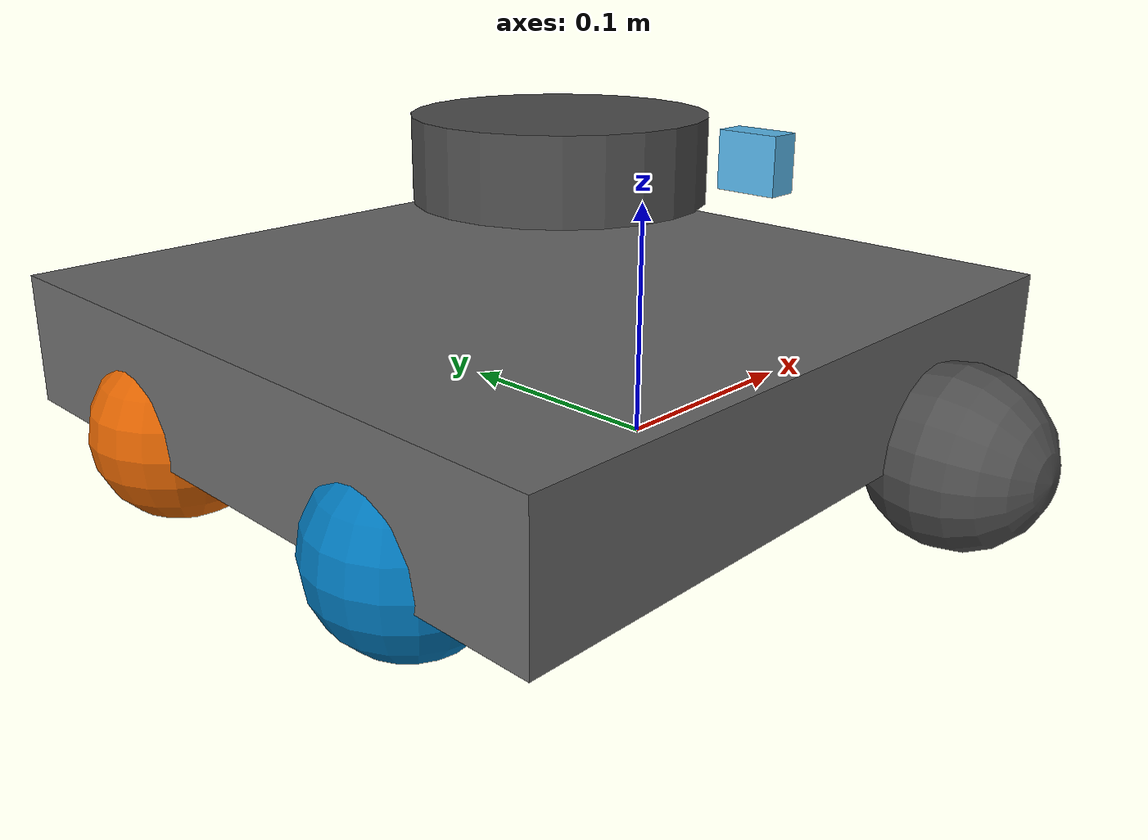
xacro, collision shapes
<?xml version="1.0" ?>
<robot name="turtlebot3_waffle_pi" xmlns:xacro="http://ros.org/wiki/xacro">

  <!-- Multi-robot namespacing arguments and properties -->
  <xacro:arg name="robot_name" default="tb3_1"/>
  <xacro:property name="robot_name" value="$(arg robot_name)"/>
  <xacro:property name="prefix" value="${robot_name}/"/>

  <!-- Init colour materials -->
  <material name="black"><color rgba="0.0 0.0 0.0 1.0"/></material>
  <material name="dark"><color rgba="0.3 0.3 0.3 1.0"/></material>
  <material name="light_black"><color rgba="0.4 0.4 0.4 1.0"/></material>
  <material name="blue"><color rgba="0.0 0.0 0.8 1.0"/></material>
  <material name="green"><color rgba="0.0 0.8 0.0 1.0"/></material>
  <material name="grey"><color rgba="0.5 0.5 0.5 1.0"/></material>
  <material name="orange"><color rgba="1.0 0.4235 0.0392 1.0"/></material>
  <material name="brown"><color rgba="0.8706 0.8118 0.7647 1.0"/></material>
  <material name="red"><color rgba="0.8 0.0 0.0 1.0"/></material>
  <material name="white"><color rgba="1.0 1.0 1.0 1.0"/></material>

  <!-- Base Footprint -->
  <link name="${prefix}base_footprint"/>

  <joint name="${prefix}base_joint" type="fixed">
    <parent link="${prefix}base_footprint"/>
    <child link="${prefix}base_link" />
    <origin xyz="0 0 0.010" rpy="0 0 0"/>
  </joint>

  <!-- Base Link -->
  <link name="${prefix}base_link">
    <visual>
      <origin xyz="-0.064 0 0.0" rpy="0 0 0"/>
      <geometry>
        <mesh filename="package://swarm_simulation/meshes/bases/waffle_pi_base.stl" scale="0.001 0.001 0.001"/>
      </geometry>
      <material name="light_black"/>
    </visual>
    <collision>
      <origin xyz="-0.064 0 0.047" rpy="0 0 0"/>
      <geometry><box size="0.266 0.266 0.050"/></geometry>
    </collision>
    <inertial>
      <origin xyz="-0.064 0 0" rpy="0 0 0"/>
      <mass value="1.3729096e+00"/>
      <inertia ixx="8.7002718e-03" ixy="-4.7576583e-05" ixz="1.1160499e-04" iyy="8.6195418e-03" iyz="-3.5422299e-06" izz="1.4612727e-02" />
    </inertial>
  </link>
  <gazebo reference="${prefix}base_link">
    <mu1>0.0</mu1>
    <mu2>0.0</mu2>
    <kp>1000000.0</kp>
    <kd>100.0</kd>
    <minDepth>0.001</minDepth>
    <maxVel>1.0</maxVel>
  </gazebo>

  <!-- Left Wheel -->
  <joint name="${prefix}wheel_left_joint" type="continuous">
    <parent link="${prefix}base_link"/>
    <child link="${prefix}wheel_left_link"/>
    <origin xyz="0.0 0.144 0.023" rpy="-1.57 0 0"/>
    <axis xyz="0 0 1"/>
    <dynamics damping="0.0" friction="0.0"/>
  </joint>
  <link name="${prefix}wheel_left_link">
    <visual>
      <origin xyz="0 0 0" rpy="1.57 0 0"/>
      <geometry>
        <mesh filename="package://swarm_simulation/meshes/wheels/left_tire.stl" scale="0.001 0.001 0.001"/>
      </geometry>
      <material name="dark"/>
    </visual>
    <collision>
      <origin xyz="0 0 0" rpy="0 0 0"/>
      <geometry><sphere radius="0.033"/></geometry>
    </collision>
    <inertial>
      <origin xyz="0 0 0" />
      <mass value="2.8498940e-02" />
      <inertia ixx="1.1175580e-05" ixy="-4.2369783e-11" ixz="-5.9381719e-09" iyy="1.1192413e-05" iyz="-1.4400107e-11" izz="2.0712558e-05" />
    </inertial>
  </link>
  <gazebo reference="${prefix}wheel_left_link">
    <mu1>1.0</mu1>
    <mu2>1.0</mu2>
    <kp>1000000.0</kp>
    <kd>100.0</kd>
    <minDepth>0.001</minDepth>
    <maxVel>0.1</maxVel>
  </gazebo>

  <!-- Right Wheel -->
  <joint name="${prefix}wheel_right_joint" type="continuous">
    <parent link="${prefix}base_link"/>
    <child link="${prefix}wheel_right_link"/>
    <origin xyz="0.0 -0.144 0.023" rpy="-1.57 0 0"/>
    <axis xyz="0 0 1"/>
    <dynamics damping="0.0" friction="0.0"/>
  </joint>
  <link name="${prefix}wheel_right_link">
    <visual>
      <origin xyz="0 0 0" rpy="1.57 0 0"/>
      <geometry>
        <mesh filename="package://swarm_simulation/meshes/wheels/right_tire.stl" scale="0.001 0.001 0.001"/>
      </geometry>
      <material name="dark"/>
    </visual>
    <collision>
      <origin xyz="0 0 0" rpy="0 0 0"/>
      <geometry><sphere radius="0.033"/></geometry>
    </collision>
    <inertial>
      <origin xyz="0 0 0" />
      <mass value="2.8498940e-02" />
      <inertia ixx="1.1175580e-05" ixy="-4.2369783e-11" ixz="-5.9381719e-09" iyy="1.1192413e-05" iyz="-1.4400107e-11" izz="2.0712558e-05" />
    </inertial>
  </link>
  <gazebo reference="${prefix}wheel_right_link">
    <mu1>1.0</mu1>
    <mu2>1.0</mu2>
    <kp>1000000.0</kp>
    <kd>100.0</kd>
    <minDepth>0.001</minDepth>
    <maxVel>0.1</maxVel>
  </gazebo>

  <!-- Casters -->
  <joint name="${prefix}caster_back_right_joint" type="fixed">
    <parent link="${prefix}base_link"/>
    <child link="${prefix}caster_back_right_link"/>
    <origin xyz="-0.177 -0.064 -0.002" rpy="0 0 0"/>
    <dynamics damping="0.0" friction="0.0"/>
  </joint>
  <link name="${prefix}caster_back_right_link">
    <collision>
      <origin xyz="0 0 0.027" rpy="0 0 0"/>
      <geometry><sphere radius="0.033"/></geometry>
    </collision>
    <inertial><mass value="0.005"/><inertia ixx="0.001" ixy="0.0" ixz="0.0" iyy="0.001" iyz="0.0" izz="0.001"/></inertial>
  </link>
  <gazebo reference="${prefix}caster_back_right_link">
    <mu1>0.0</mu1>
    <mu2>0.0</mu2>
    <kp>1000000.0</kp>
    <kd>100.0</kd>
    <minDepth>0.001</minDepth>
    <maxVel>1.0</maxVel>
  </gazebo>

  <joint name="${prefix}caster_back_left_joint" type="fixed">
    <parent link="${prefix}base_link"/>
    <child link="${prefix}caster_back_left_link"/>
    <origin xyz="-0.177 0.064 -0.002" rpy="0 0 0"/>
    <dynamics damping="0.0" friction="0.0"/>
  </joint>
  <link name="${prefix}caster_back_left_link">
    <collision>
      <origin xyz="0 0 0.027" rpy="0 0 0"/>
      <geometry><sphere radius="0.033"/></geometry>
    </collision>
    <inertial><mass value="0.005"/><inertia ixx="0.001" ixy="0.0" ixz="0.0" iyy="0.001" iyz="0.0" izz="0.001"/></inertial>
  </link>
  <gazebo reference="${prefix}caster_back_left_link">
    <mu1>0.0</mu1>
    <mu2>0.0</mu2>
    <kp>1000000.0</kp>
    <kd>100.0</kd>
    <minDepth>0.001</minDepth>
    <maxVel>1.0</maxVel>
  </gazebo>

  <!-- Front Caster (Added for Anti-Tip Stability) -->
  <joint name="${prefix}caster_front_joint" type="fixed">
    <parent link="${prefix}base_link"/>
    <child link="${prefix}caster_front_link"/>
    <origin xyz="0.06 0 -0.002" rpy="0 0 0"/>
  </joint>
  <link name="${prefix}caster_front_link">
    <collision>
      <origin xyz="0 0 0.027" rpy="0 0 0"/>
      <geometry><sphere radius="0.033"/></geometry>
    </collision>
    <inertial><mass value="0.005"/><inertia ixx="0.001" ixy="0.0" ixz="0.0" iyy="0.001" iyz="0.0" izz="0.001"/></inertial>
  </link>
  <gazebo reference="${prefix}caster_front_link">
    <mu1>0.0</mu1>
    <mu2>0.0</mu2>
    <kp>1000000.0</kp>
    <kd>100.0</kd>
    <minDepth>0.001</minDepth>
    <maxVel>1.0</maxVel>
  </gazebo>

  <!-- IMU -->
  <joint name="${prefix}imu_joint" type="fixed">
    <parent link="${prefix}base_link"/>
    <child link="${prefix}imu_link"/>
    <origin xyz="0.0 0 0.068" rpy="0 0 0"/>
  </joint>
  <link name="${prefix}imu_link"/>

  <!-- LiDAR (LDS) -->
  <joint name="${prefix}scan_joint" type="fixed">
    <parent link="${prefix}base_link"/>
    <child link="${prefix}base_scan"/>
    <origin xyz="-0.064 0 0.122" rpy="0 0 0"/>
  </joint>
  <link name="${prefix}base_scan">
    <visual>
      <origin xyz="0 0 0.0" rpy="0 0 0"/>
      <geometry>
        <mesh filename="package://swarm_simulation/meshes/sensors/lds.stl" scale="0.001 0.001 0.001"/>
      </geometry>
      <material name="dark"/>
    </visual>
    <collision>
      <origin xyz="0.015 0 -0.0065" rpy="0 0 0"/>
      <geometry><cylinder length="0.0315" radius="0.055"/></geometry>
    </collision>
    <inertial>
      <mass value="0.114" />
      <origin xyz="0 0 0" />
      <inertia ixx="0.001" ixy="0.0" ixz="0.0" iyy="0.001" iyz="0.0" izz="0.001" />
    </inertial>
  </link>

  <!-- Camera -->
  <joint name="${prefix}camera_joint" type="fixed">
    <origin xyz="0.073 -0.011 0.084" rpy="0 0 0"/>
    <parent link="${prefix}base_link"/>
    <child link="${prefix}camera_link"/>
  </joint>
  <link name="${prefix}camera_link">
    <collision>
      <origin xyz="0.005 0.011 0.013" rpy="0 0 0"/>
      <geometry><box size="0.015 0.030 0.027"/></geometry>
    </collision>
  </link>

  <joint name="${prefix}camera_rgb_joint" type="fixed">
    <origin xyz="0.003 0.011 0.009" rpy="0 0 0"/>
    <parent link="${prefix}camera_link"/>
    <child link="${prefix}camera_rgb_frame"/>
  </joint>
  <link name="${prefix}camera_rgb_frame"/>

  <joint name="${prefix}camera_rgb_optical_joint" type="fixed">
    <origin xyz="0 0 0" rpy="-1.57 0 -1.57"/>
    <parent link="${prefix}camera_rgb_frame"/>
    <child link="${prefix}camera_rgb_optical_frame"/>
  </joint>
  <link name="${prefix}camera_rgb_optical_frame"/>

  <!-- GAZEBO PLUGINS & SENSORS FOR ROS 2 JAZZY          -->

  <!-- Gazebo Harmonic Diff Drive Plugin -->
  <gazebo>
    <plugin filename="gz-sim-diff-drive-system" name="gz::sim::systems::DiffDrive">
      <ros><namespace>/${robot_name}</namespace></ros>
      <left_joint>${prefix}wheel_left_joint</left_joint>
      <right_joint>${prefix}wheel_right_joint</right_joint>
      <wheel_separation>0.287</wheel_separation>
      <wheel_radius>0.033</wheel_radius>
      <max_linear_acceleration>2.0</max_linear_acceleration>
      <min_linear_acceleration>-2.0</min_linear_acceleration>
      <max_angular_acceleration>4.0</max_angular_acceleration>
      <min_angular_acceleration>-4.0</min_angular_acceleration>
      <topic>/${robot_name}/cmd_vel</topic>
      <odom_topic>/${robot_name}/odom</odom_topic>
      <tf_topic>/${robot_name}/tf</tf_topic>
      <frame_id>${prefix}odom</frame_id>
      <child_frame_id>${prefix}base_footprint</child_frame_id>
      <odom_publish_frequency>30</odom_publish_frequency>
    </plugin>
  </gazebo>

  <!-- Gazebo Harmonic LiDAR Sensor Plugin -->
  <gazebo reference="${prefix}base_footprint">
    <sensor type="gpu_lidar" name="${robot_name}_lidar">
      <topic>/${robot_name}/scan</topic>
      <gz_frame_id>${prefix}base_scan</gz_frame_id>
      <pose>-0.064 0 0.132 0 0 0</pose>
      <always_on>true</always_on>
      <visualize>false</visualize>
      <update_rate>10</update_rate>
      <ray>
        <scan>
          <horizontal>
            <samples>1440</samples>
            <resolution>1</resolution>
            <min_angle>0.0</min_angle>
            <max_angle>6.28319</max_angle>
          </horizontal>
        </scan>
        <range><min>0.120</min><max>4.0</max><resolution>0.015</resolution></range>
      </ray>
    </sensor>
  </gazebo>

  <!-- Gazebo Harmonic Camera Sensor Plugin -->
  <gazebo reference="${prefix}base_footprint">
    <sensor type="camera" name="${robot_name}_camera">
      <topic>/${robot_name}/camera/image_raw</topic>
      <camera_info_topic>/${robot_name}/camera/camera_info</camera_info_topic>
      <gz_frame_id>${prefix}camera_link</gz_frame_id>
      <pose>0.073 -0.011 0.094 0 0 0</pose>
      <always_on>true</always_on>
      <visualize>true</visualize>
      <update_rate>30</update_rate>
      <camera name="intel_realsense_r200">
        <horizontal_fov>1.085595</horizontal_fov>
        <image><width>1920</width><height>1080</height><format>R8G8B8</format></image>
        <clip><near>0.03</near><far>100</far></clip>
      </camera>
    </sensor>
  </gazebo>

</robot>
